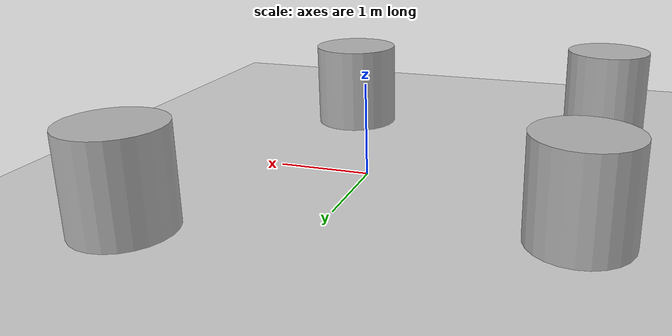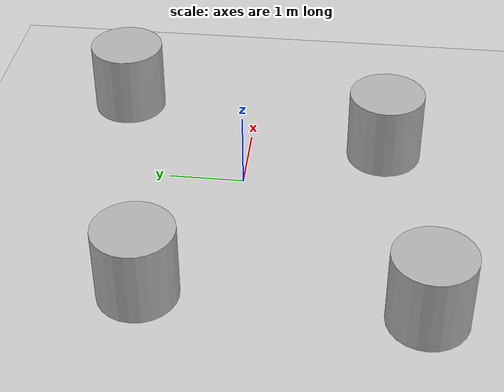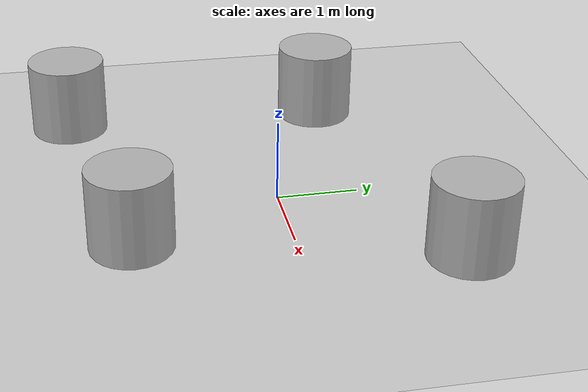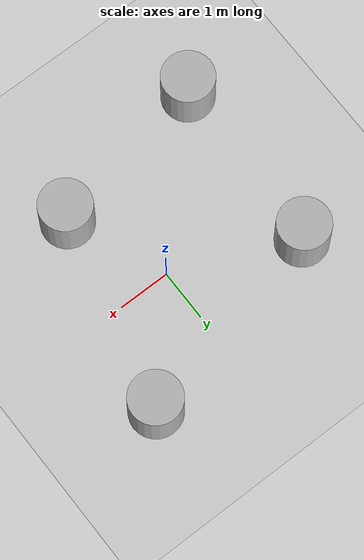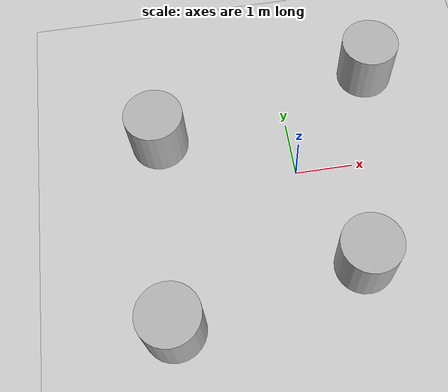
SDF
<sdf version="1.10">
 <world name="empty">
  <physics name="1ms" type="ignored">
   <max_step_size>0.001</max_step_size>
   <real_time_factor>1</real_time_factor>
   <real_time_update_rate>1000</real_time_update_rate>
  </physics>
  <plugin name="gz::sim::systems::Physics" filename="gz-sim-physics-system"/>
  <plugin name="gz::sim::systems::UserCommands" filename="gz-sim-user-commands-system"/>
  <plugin name="gz::sim::systems::SceneBroadcaster" filename="gz-sim-scene-broadcaster-system"/>
  <plugin name="gz::sim::systems::Contact" filename="gz-sim-contact-system"/>
  <gravity>0 0 -9.8000000000000007</gravity>
  <magnetic_field>5.5644999999999998e-06 2.2875799999999999e-05 -4.2388400000000002e-05</magnetic_field>
  <atmosphere type="adiabatic"/>
  <scene>
   <ambient>0.400000006 0.400000006 0.400000006 1</ambient>
   <background>0.699999988 0.699999988 0.699999988 1</background>
   <shadows>true</shadows>
  </scene>
  <model name="ground_plane">
   <static>true</static>
   <link name="link">
    <collision name="collision">
     <geometry><plane><normal>0 0 1</normal><size>100 100</size></plane></geometry>
    </collision>
    <visual name="visual">
     <geometry><plane><normal>0 0 1</normal><size>100 100</size></plane></geometry>
     <material>
      <ambient>0.8 0.8 0.8 1</ambient>
      <diffuse>0.8 0.8 0.8 1</diffuse>
      <specular>0.8 0.8 0.8 1</specular>
     </material>
    </visual>
   </link>
  </model>
  <model name="cylinder">
   <pose>1.659397 1.859480 0.5 0 0 0</pose>
   <link name="cylinder_link">
    <inertial><inertia><ixx>0.1458</ixx><iyy>0.1458</iyy><izz>0.125</izz></inertia><mass>1</mass></inertial>
    <collision name="cylinder_collision">
     <geometry><cylinder><radius>0.5</radius><length>1</length></cylinder></geometry>
    </collision>
    <visual name="cylinder_visual">
     <geometry><cylinder><radius>0.5</radius><length>1</length></cylinder></geometry>
     <material>
      <ambient>0.3 0.3 0.3 1</ambient>
      <diffuse>0.7 0.7 0.7 1</diffuse>
      <specular>1 1 1 1</specular>
     </material>
    </visual>
   </link>
  </model>
  <model name="cylinder_0">
   <pose>0.792712 -1.847414 0.5 0 0 0</pose>
   <link name="cylinder_link">
    <collision name="cylinder_collision">
     <geometry><cylinder><radius>0.5</radius><length>1</length></cylinder></geometry>
    </collision>
    <visual name="cylinder_visual">
     <geometry><cylinder><radius>0.5</radius><length>1</length></cylinder></geometry>
     <material><ambient>0.3 0.3 0.3 1</ambient><diffuse>0.7 0.7 0.7 1</diffuse></material>
    </visual>
   </link>
  </model>
  <model name="cylinder_1">
   <pose>-2.290281 0.978695 0.5 0 0 0</pose>
   <link name="cylinder_link">
    <collision name="cylinder_collision">
     <geometry><cylinder><radius>0.5</radius><length>1</length></cylinder></geometry>
    </collision>
    <visual name="cylinder_visual">
     <geometry><cylinder><radius>0.5</radius><length>1</length></cylinder></geometry>
     <material><ambient>0.3 0.3 0.3 1</ambient><diffuse>0.7 0.7 0.7 1</diffuse></material>
    </visual>
   </link>
  </model>
  <model name="cylinder_2">
   <pose>-2.375465 -2.431436 0.5 0 0 0</pose>
   <link name="cylinder_link">
    <collision name="cylinder_collision">
     <geometry><cylinder><radius>0.5</radius><length>1</length></cylinder></geometry>
    </collision>
    <visual name="cylinder_visual">
     <geometry><cylinder><radius>0.5</radius><length>1</length></cylinder></geometry>
     <material><ambient>0.3 0.3 0.3 1</ambient><diffuse>0.7 0.7 0.7 1</diffuse></material>
    </visual>
   </link>
  </model>
  <light name="sun" type="directional">
   <pose>0 0 10 0 0 0</pose>
   <direction>-0.5 0.1 -0.9</direction>
   <diffuse>0.8 0.8 0.8 1</diffuse>
   <specular>0.2 0.2 0.2 1</specular>
  </light>
 </world>
</sdf>
